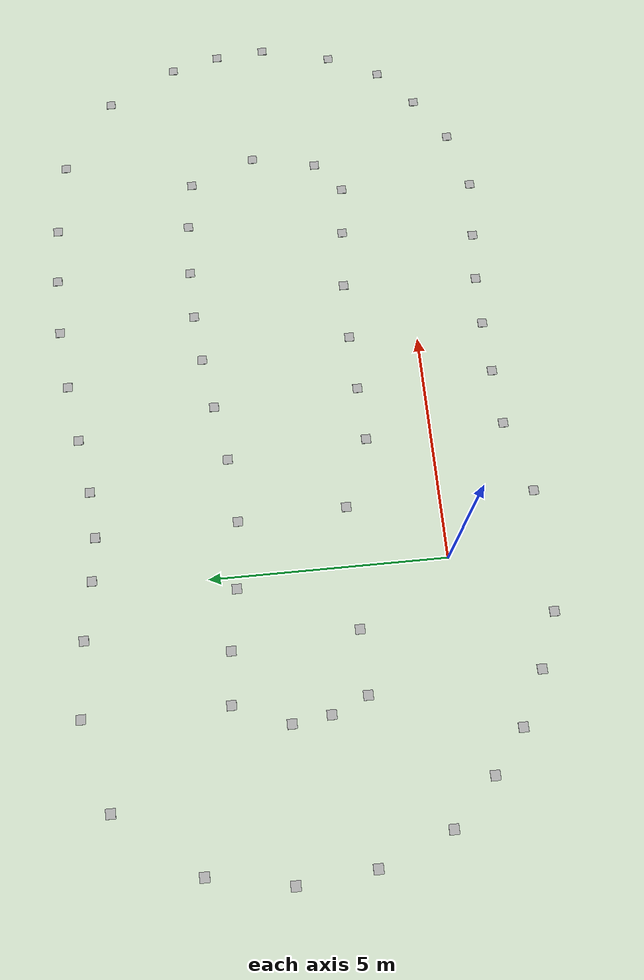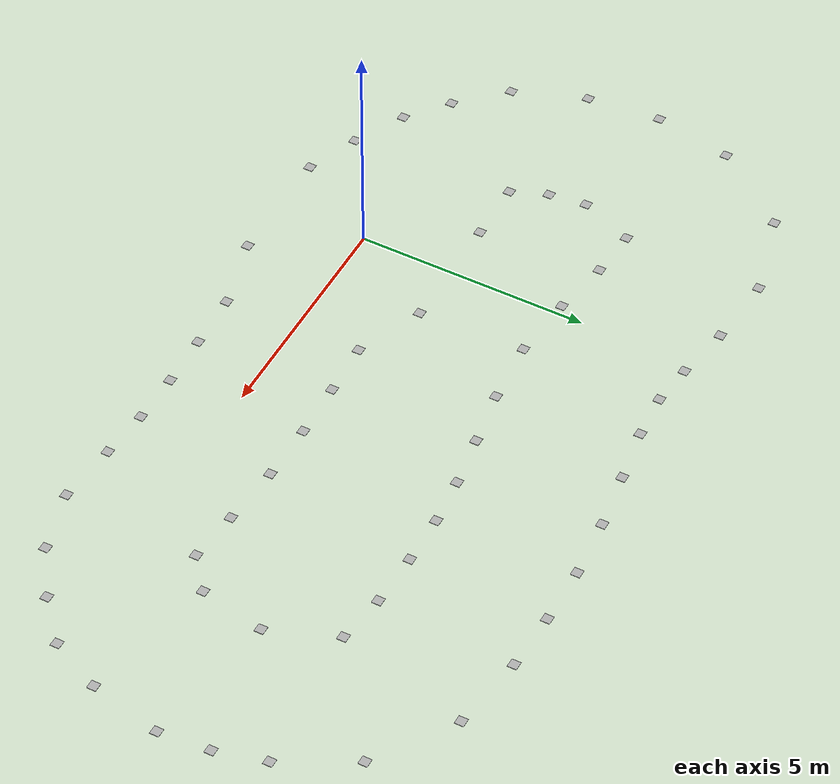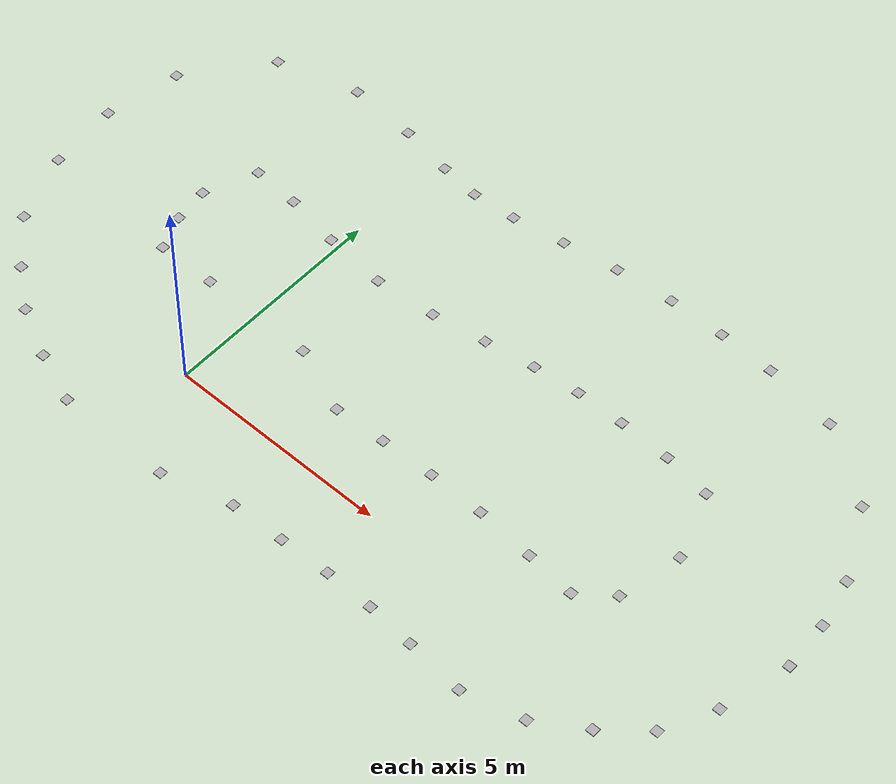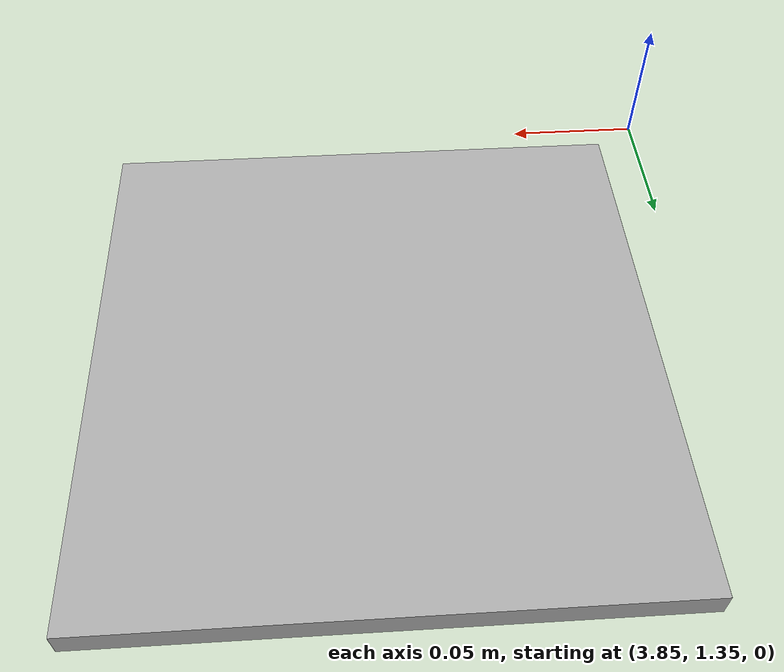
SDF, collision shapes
<?xml version='1.0' encoding='UTF-8'?>
<sdf version="1.4">
  <model name="some track">
    <include>
      <uri>model://cone_yellow</uri>
      <pose>2.873785118554246 -1.588397784272178 0 0 0 0</pose>
      <name>cone_right</name>
    </include>
    <include>
      <uri>model://cone_yellow</uri>
      <pose>4.109899691031446 -1.5324267809525463 0 0 0 0</pose>
      <name>cone_right</name>
    </include>
    <include>
      <uri>model://cone_yellow</uri>
      <pose>5.278329979375104 -1.491636736297137 0 0 0 0</pose>
      <name>cone_right</name>
    </include>
    <include>
      <uri>model://cone_yellow</uri>
      <pose>6.394781885078185 -1.5048728857818385 0 0 0 0</pose>
      <name>cone_right</name>
    </include>
    <include>
      <uri>model://cone_yellow</uri>
      <pose>7.5018387280929835 -1.5992198583390964 0 0 0 0</pose>
      <name>cone_right</name>
    </include>
    <include>
      <uri>model://cone_yellow</uri>
      <pose>8.846174330668715 -1.7255772796835793 0 0 0 0</pose>
      <name>cone_right</name>
    </include>
    <include>
      <uri>model://cone_yellow</uri>
      <pose>12.112459065358557 0.06706609400896779 0 0 0 0</pose>
      <name>cone_right</name>
    </include>
    <include>
      <uri>model://cone_yellow</uri>
      <pose>12.65280247313592 4.990335612658668 0 0 0 0</pose>
      <name>cone_right</name>
    </include>
    <include>
      <uri>model://cone_yellow</uri>
      <pose>11.81582415716132 6.535771864348608 0 0 0 0</pose>
      <name>cone_right</name>
    </include>
    <include>
      <uri>model://cone_yellow</uri>
      <pose>10.136745860389514 7.656195020794679 0 0 0 0</pose>
      <name>cone_right</name>
    </include>
    <include>
      <uri>model://cone_yellow</uri>
      <pose>8.467244608739934 7.8913228186636 0 0 0 0</pose>
      <name>cone_right</name>
    </include>
    <include>
      <uri>model://cone_yellow</uri>
      <pose>7.183816772921746 7.928524324647702 0 0 0 0</pose>
      <name>cone_right</name>
    </include>
    <include>
      <uri>model://cone_yellow</uri>
      <pose>5.8945787203016495 7.90843704022336 0 0 0 0</pose>
      <name>cone_right</name>
    </include>
    <include>
      <uri>model://cone_yellow</uri>
      <pose>4.572644303193363 7.7769881685943325 0 0 0 0</pose>
      <name>cone_right</name>
    </include>
    <include>
      <uri>model://cone_yellow</uri>
      <pose>3.3108481135702656 7.576021135731193 0 0 0 0</pose>
      <name>cone_right</name>
    </include>
    <include>
      <uri>model://cone_yellow</uri>
      <pose>2.1195680796341265 7.377184350638801 0 0 0 0</pose>
      <name>cone_right</name>
    </include>
    <include>
      <uri>model://cone_yellow</uri>
      <pose>1.1173779894807898 7.299915989997625 0 0 0 0</pose>
      <name>cone_right</name>
    </include>
    <include>
      <uri>model://cone_yellow</uri>
      <pose>0.19551821633727468 7.401123640715179 0 0 0 0</pose>
      <name>cone_right</name>
    </include>
    <include>
      <uri>model://cone_yellow</uri>
      <pose>-1.0233742442235971 7.606018871141023 0 0 0 0</pose>
      <name>cone_right</name>
    </include>
    <include>
      <uri>model://cone_yellow</uri>
      <pose>-2.581751978833324 7.717779164905405 0 0 0 0</pose>
      <name>cone_right</name>
    </include>
    <include>
      <uri>model://cone_yellow</uri>
      <pose>-4.414607917592008 7.200028564248505 0 0 0 0</pose>
      <name>cone_right</name>
    </include>
    <include>
      <uri>model://cone_yellow</uri>
      <pose>-5.7275200495184455 5.468456065882806 0 0 0 0</pose>
      <name>cone_right</name>
    </include>
    <include>
      <uri>model://cone_yellow</uri>
      <pose>-6.042247282224766 3.7583195551044852 0 0 0 0</pose>
      <name>cone_right</name>
    </include>
    <include>
      <uri>model://cone_yellow</uri>
      <pose>-5.885052649621759 2.1635461957821023 0 0 0 0</pose>
      <name>cone_right</name>
    </include>
    <include>
      <uri>model://cone_yellow</uri>
      <pose>-5.307871409803275 0.6316714243128383 0 0 0 0</pose>
      <name>cone_right</name>
    </include>
    <include>
      <uri>model://cone_yellow</uri>
      <pose>10.190982446349231 -1.3717520075039644 0 0 0 0</pose>
      <name>cone_right</name>
    </include>
    <include>
      <uri>model://cone_yellow</uri>
      <pose>11.229791331923217 -0.703093414490823 0 0 0 0</pose>
      <name>cone_right</name>
    </include>
    <include>
      <uri>model://cone_yellow</uri>
      <pose>12.662631174094233 1.207359708403871 0 0 0 0</pose>
      <name>cone_right</name>
    </include>
    <include>
      <uri>model://cone_yellow</uri>
      <pose>13.03278146665508 2.7954238668100757 0 0 0 0</pose>
      <name>cone_right</name>
    </include>
    <include>
      <uri>model://cone_yellow</uri>
      <pose>12.937258810510347 3.905874744492621 0 0 0 0</pose>
      <name>cone_right</name>
    </include>
    <include>
      <uri>model://cone_yellow</uri>
      <pose>-4.393269590389451 -0.3103418717249369 0 0 0 0</pose>
      <name>cone_right</name>
    </include>
    <include>
      <uri>model://cone_yellow</uri>
      <pose>-3.5329042767214673 -1.0020081042815434 0 0 0 0</pose>
      <name>cone_right</name>
    </include>
    <include>
      <uri>model://cone_yellow</uri>
      <pose>-2.436360249497575 -1.5587150719490594 0 0 0 0</pose>
      <name>cone_right</name>
    </include>
    <include>
      <uri>model://cone_blue</uri>
      <pose>2.7776402513365377 1.4100611806809344 0 0 0 0</pose>
      <name>cone_left</name>
    </include>
    <include>
      <uri>model://cone_blue</uri>
      <pose>3.9669202960378214 1.4641640974636676 0 0 0 0</pose>
      <name>cone_left</name>
    </include>
    <include>
      <uri>model://cone_blue</uri>
      <pose>5.205873507049801 1.5074881460007263 0 0 0 0</pose>
      <name>cone_left</name>
    </include>
    <include>
      <uri>model://cone_blue</uri>
      <pose>6.4905788889083915 1.4935972131281299 0 0 0 0</pose>
      <name>cone_left</name>
    </include>
    <include>
      <uri>model://cone_blue</uri>
      <pose>7.835314253080026 1.3821882107173042 0 0 0 0</pose>
      <name>cone_left</name>
    </include>
    <include>
      <uri>model://cone_blue</uri>
      <pose>8.979230548552527 1.271470608302606 0 0 0 0</pose>
      <name>cone_left</name>
    </include>
    <include>
      <uri>model://cone_blue</uri>
      <pose>9.69433520554195 1.8426440276929958 0 0 0 0</pose>
      <name>cone_left</name>
    </include>
    <include>
      <uri>model://cone_blue</uri>
      <pose>9.982909787720011 3.279208324393963 0 0 0 0</pose>
      <name>cone_left</name>
    </include>
    <include>
      <uri>model://cone_blue</uri>
      <pose>9.408176840971144 4.746013668154986 0 0 0 0</pose>
      <name>cone_left</name>
    </include>
    <include>
      <uri>model://cone_blue</uri>
      <pose>8.311418820743102 4.895372498014881 0 0 0 0</pose>
      <name>cone_left</name>
    </include>
    <include>
      <uri>model://cone_blue</uri>
      <pose>7.119831581210114 4.929206753058853 0 0 0 0</pose>
      <name>cone_left</name>
    </include>
    <include>
      <uri>model://cone_blue</uri>
      <pose>6.016529032748223 4.910916711469243 0 0 0 0</pose>
      <name>cone_left</name>
    </include>
    <include>
      <uri>model://cone_blue</uri>
      <pose>4.9535606401255725 4.801269306830314 0 0 0 0</pose>
      <name>cone_left</name>
    </include>
    <include>
      <uri>model://cone_blue</uri>
      <pose>3.814023912954695 4.618519806075729 0 0 0 0</pose>
      <name>cone_left</name>
    </include>
    <include>
      <uri>model://cone_blue</uri>
      <pose>2.5846058294416694 4.413446863739205 0 0 0 0</pose>
      <name>cone_left</name>
    </include>
    <include>
      <uri>model://cone_blue</uri>
      <pose>1.189271696833693 4.300777564575575 0 0 0 0</pose>
      <name>cone_left</name>
    </include>
    <include>
      <uri>model://cone_blue</uri>
      <pose>-0.23795868025080308 4.4326058657769245 0 0 0 0</pose>
      <name>cone_left</name>
    </include>
    <include>
      <uri>model://cone_blue</uri>
      <pose>-1.501622985654602 4.644384501182493 0 0 0 0</pose>
      <name>cone_left</name>
    </include>
    <include>
      <uri>model://cone_blue</uri>
      <pose>-2.579178957978915 4.71778026831166 0 0 0 0</pose>
      <name>cone_left</name>
    </include>
    <include>
      <uri>model://cone_blue</uri>
      <pose>-3.0494263292854193 3.5509003090176634 0 0 0 0</pose>
      <name>cone_left</name>
    </include>
    <include>
      <uri>model://cone_blue</uri>
      <pose>-2.942655359324774 2.7486087446202236 0 0 0 0</pose>
      <name>cone_left</name>
    </include>
    <include>
      <uri>model://cone_blue</uri>
      <pose>-2.6301774441008794 1.9844297272039995 0 0 0 0</pose>
      <name>cone_left</name>
    </include>
    <include>
      <uri>model://cone_orange_big</uri>
      <pose>-1.3 2.0 0 0 0 0</pose>
      <name>cone_orange_big</name>
    </include>
    <include>
      <uri>model://cone_orange_big</uri>
      <pose>-1.3 -2.0 0 0 0 0</pose>
      <name>cone_orange_big</name>
    </include>
    <include>
      <uri>model://cone_orange_big</uri>
      <pose>1.3 2.0 0 0 0 0</pose>
      <name>cone_orange_big</name>
    </include>
    <include>
      <uri>model://cone_orange_big</uri>
      <pose>1.3 -2.0 0 0 0 0</pose>
      <name>cone_orange_big</name>
    </include>
  </model>
</sdf>

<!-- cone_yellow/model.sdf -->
<sdf version='1.4'>
  <model name="cone_yellow">
    <link name="link">
    <collision name="collision"><geometry><box><size> 0.2 0.2 0.01</size>
             </box></geometry></collision>
      <visual name="visual">
        <geometry>
          <mesh>
            <uri>model://YellowCone.dae</uri>
            <scale>1 1 1</scale>
          </mesh>
        </geometry>
        <material>
            <script>
              <uri>model://cone_yellow/materials/scripts</uri>
              <uri>model://cone_yellow/materials/textures</uri>
              <name>cone_yellow/Image</name>
            </script>
        </material>
      </visual>
    </link>
  </model>
</sdf>

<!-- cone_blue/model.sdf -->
<sdf version='1.4'>
  <model name="cone_blue">
    <link name="link">
    <collision name="collision"><geometry><box><size> 0.2 0.2 0.01</size>
             </box></geometry></collision>
      <visual name="visual">
        <geometry>
          <mesh>
            <uri>model://BlueCone.dae</uri>
            <scale>1 1 1</scale>
          </mesh>
        </geometry>
        <material>
            <script>
              <uri>model://cone_blue/materials/scripts</uri>
              <uri>model://cone_blue/materials/textures</uri>
              <name>cone_blue/Image</name>
            </script>
        </material>
      </visual>
    </link>
  </model>
</sdf>

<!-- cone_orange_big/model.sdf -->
<sdf version='1.4'>
  <model name="cone_orange_big">
    <link name="link">
    <collision name="collision"><geometry><box><size> 0.2 0.2 0.01</size>
             </box></geometry></collision>
      <visual name="visual">
        <geometry>
          <mesh>
            <uri>model://BigOrangeCone.dae</uri>
            <scale>1 1 1</scale>
          </mesh>
        </geometry>
        <material>
            <script>
              <uri>model://cone_orange_big/materials/scripts</uri>
              <uri>model://cone_orange_big/materials/textures</uri>
              <name>cone_orange_big/Image</name>
            </script>
        </material>
      </visual>
    </link>
  </model>
</sdf>
